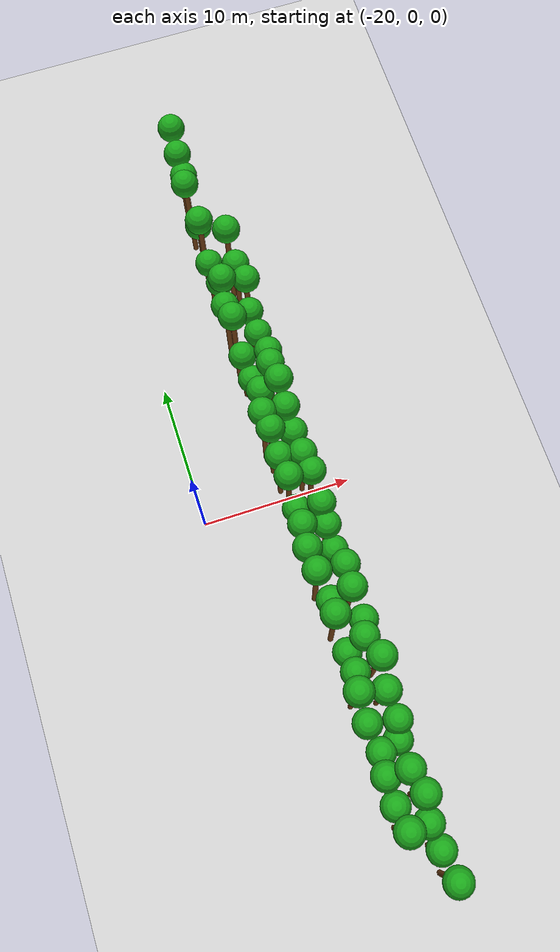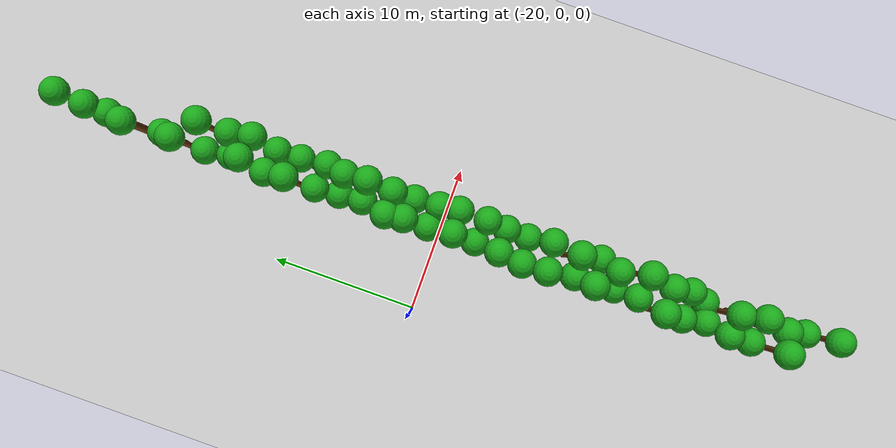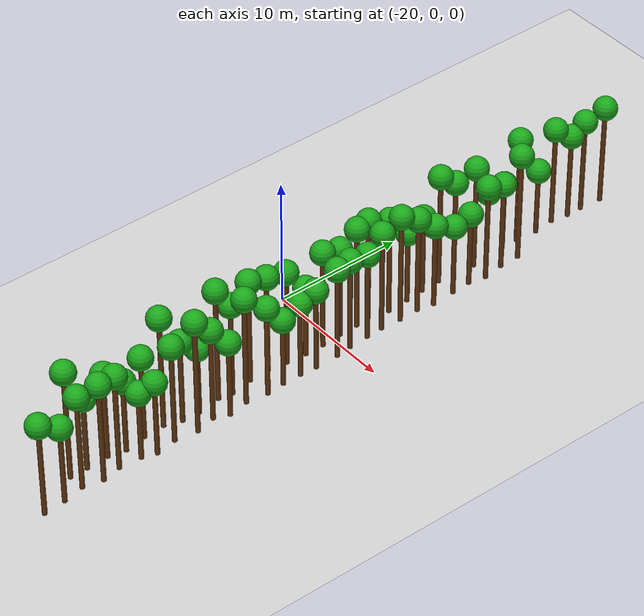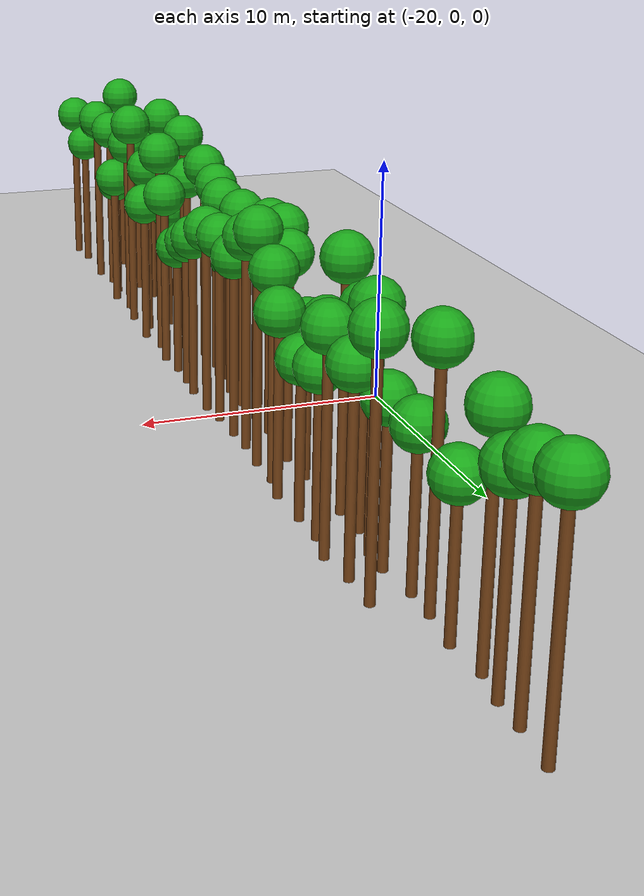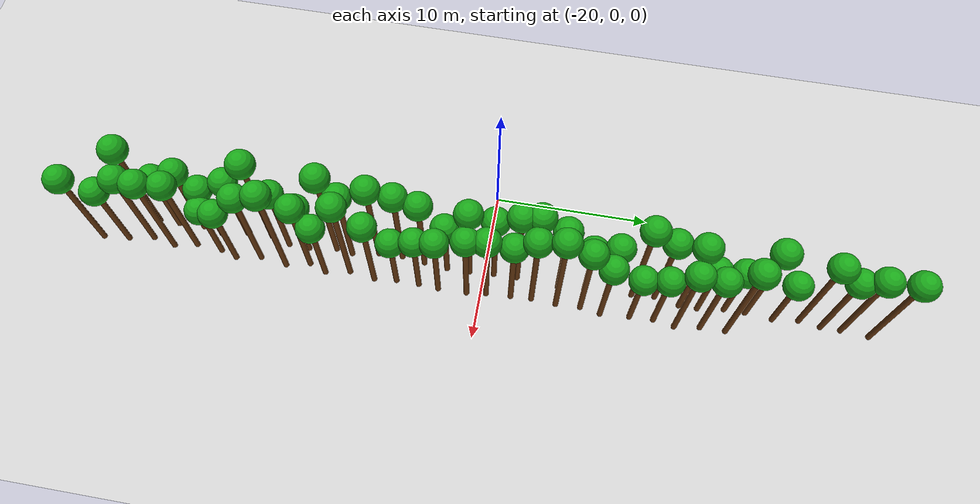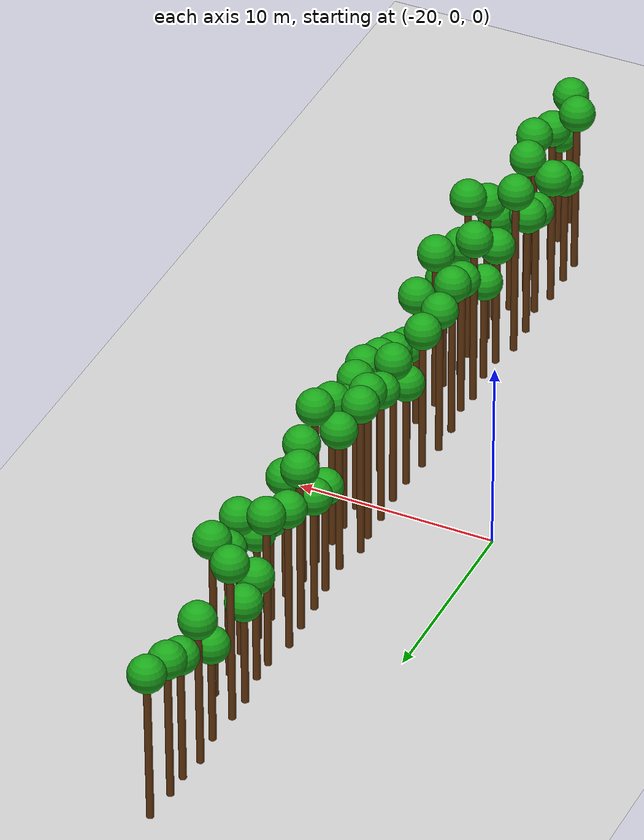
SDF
<sdf version="1.6">
 <world name="forest_world">
  <include><uri>model://sun</uri></include>
  <include><uri>model://ground_plane</uri></include>
  <model name="tree_240">
   <static>true</static>
   <link name="trunk">
    <collision name="collision">
     <pose>-14.51 -21.95 4.31 0 0 0</pose>
     <geometry><cylinder><radius>0.18</radius><length>8.63</length></cylinder></geometry>
    </collision>
    <visual name="trunk_visual">
     <pose>-14.51 -21.95 4.31 0 0 0</pose>
     <geometry><cylinder><radius>0.18</radius><length>8.63</length></cylinder></geometry>
     <material><ambient>0.35 0.20 0.05 1</ambient><diffuse>0.45 0.25 0.08 1</diffuse></material>
    </visual>
    <visual name="leaf_visual">
     <pose>-14.51 -21.95 9.08 0 0 0</pose>
     <geometry><sphere><radius>0.9</radius></sphere></geometry>
     <material><ambient>0.05 0.45 0.05 1</ambient><diffuse>0.10 0.65 0.10 1</diffuse></material>
    </visual>
   </link>
  </model>
  <model name="tree_241">
   <static>true</static>
   <link name="trunk">
    <collision name="collision">
     <pose>-14.52 -20.60 2.82 0 0 0</pose>
     <geometry><cylinder><radius>0.18</radius><length>5.64</length></cylinder></geometry>
    </collision>
    <visual name="trunk_visual">
     <pose>-14.52 -20.60 2.82 0 0 0</pose>
     <geometry><cylinder><radius>0.18</radius><length>5.64</length></cylinder></geometry>
     <material><ambient>0.35 0.20 0.05 1</ambient><diffuse>0.45 0.25 0.08 1</diffuse></material>
    </visual>
    <visual name="leaf_visual">
     <pose>-14.52 -20.60 6.09 0 0 0</pose>
     <geometry><sphere><radius>0.9</radius></sphere></geometry>
     <material><ambient>0.05 0.45 0.05 1</ambient><diffuse>0.10 0.65 0.10 1</diffuse></material>
    </visual>
   </link>
  </model>
  <model name="tree_242">
   <static>true</static>
   <link name="trunk">
    <collision name="collision">
     <pose>-14.58 -18.91 3.37 0 0 0</pose>
     <geometry><cylinder><radius>0.18</radius><length>6.74</length></cylinder></geometry>
    </collision>
    <visual name="trunk_visual">
     <pose>-14.58 -18.91 3.37 0 0 0</pose>
     <geometry><cylinder><radius>0.18</radius><length>6.74</length></cylinder></geometry>
     <material><ambient>0.35 0.20 0.05 1</ambient><diffuse>0.45 0.25 0.08 1</diffuse></material>
    </visual>
    <visual name="leaf_visual">
     <pose>-14.58 -18.91 7.19 0 0 0</pose>
     <geometry><sphere><radius>0.9</radius></sphere></geometry>
     <material><ambient>0.05 0.45 0.05 1</ambient><diffuse>0.10 0.65 0.10 1</diffuse></material>
    </visual>
   </link>
  </model>
  <model name="tree_243">
   <static>true</static>
   <link name="trunk">
    <collision name="collision">
     <pose>-14.30 -17.60 2.80 0 0 0</pose>
     <geometry><cylinder><radius>0.18</radius><length>5.59</length></cylinder></geometry>
    </collision>
    <visual name="trunk_visual">
     <pose>-14.30 -17.60 2.80 0 0 0</pose>
     <geometry><cylinder><radius>0.18</radius><length>5.59</length></cylinder></geometry>
     <material><ambient>0.35 0.20 0.05 1</ambient><diffuse>0.45 0.25 0.08 1</diffuse></material>
    </visual>
    <visual name="leaf_visual">
     <pose>-14.30 -17.60 6.04 0 0 0</pose>
     <geometry><sphere><radius>0.9</radius></sphere></geometry>
     <material><ambient>0.05 0.45 0.05 1</ambient><diffuse>0.10 0.65 0.10 1</diffuse></material>
    </visual>
   </link>
  </model>
  <model name="tree_244">
   <static>true</static>
   <link name="trunk">
    <collision name="collision">
     <pose>-14.60 -15.90 3.25 0 0 0</pose>
     <geometry><cylinder><radius>0.18</radius><length>6.49</length></cylinder></geometry>
    </collision>
    <visual name="trunk_visual">
     <pose>-14.60 -15.90 3.25 0 0 0</pose>
     <geometry><cylinder><radius>0.18</radius><length>6.49</length></cylinder></geometry>
     <material><ambient>0.35 0.20 0.05 1</ambient><diffuse>0.45 0.25 0.08 1</diffuse></material>
    </visual>
    <visual name="leaf_visual">
     <pose>-14.60 -15.90 6.94 0 0 0</pose>
     <geometry><sphere><radius>0.9</radius></sphere></geometry>
     <material><ambient>0.05 0.45 0.05 1</ambient><diffuse>0.10 0.65 0.10 1</diffuse></material>
    </visual>
   </link>
  </model>
  <model name="tree_245">
   <static>true</static>
   <link name="trunk">
    <collision name="collision">
     <pose>-14.68 -14.26 4.46 0 0 0</pose>
     <geometry><cylinder><radius>0.18</radius><length>8.91</length></cylinder></geometry>
    </collision>
    <visual name="trunk_visual">
     <pose>-14.68 -14.26 4.46 0 0 0</pose>
     <geometry><cylinder><radius>0.18</radius><length>8.91</length></cylinder></geometry>
     <material><ambient>0.35 0.20 0.05 1</ambient><diffuse>0.45 0.25 0.08 1</diffuse></material>
    </visual>
    <visual name="leaf_visual">
     <pose>-14.68 -14.26 9.36 0 0 0</pose>
     <geometry><sphere><radius>0.9</radius></sphere></geometry>
     <material><ambient>0.05 0.45 0.05 1</ambient><diffuse>0.10 0.65 0.10 1</diffuse></material>
    </visual>
   </link>
  </model>
  <model name="tree_246">
   <static>true</static>
   <link name="trunk">
    <collision name="collision">
     <pose>-14.29 -12.97 3.22 0 0 0</pose>
     <geometry><cylinder><radius>0.18</radius><length>6.45</length></cylinder></geometry>
    </collision>
    <visual name="trunk_visual">
     <pose>-14.29 -12.97 3.22 0 0 0</pose>
     <geometry><cylinder><radius>0.18</radius><length>6.45</length></cylinder></geometry>
     <material><ambient>0.35 0.20 0.05 1</ambient><diffuse>0.45 0.25 0.08 1</diffuse></material>
    </visual>
    <visual name="leaf_visual">
     <pose>-14.29 -12.97 6.90 0 0 0</pose>
     <geometry><sphere><radius>0.9</radius></sphere></geometry>
     <material><ambient>0.05 0.45 0.05 1</ambient><diffuse>0.10 0.65 0.10 1</diffuse></material>
    </visual>
   </link>
  </model>
  <model name="tree_247">
   <static>true</static>
   <link name="trunk">
    <collision name="collision">
     <pose>-14.26 -11.61 2.59 0 0 0</pose>
     <geometry><cylinder><radius>0.18</radius><length>5.19</length></cylinder></geometry>
    </collision>
    <visual name="trunk_visual">
     <pose>-14.26 -11.61 2.59 0 0 0</pose>
     <geometry><cylinder><radius>0.18</radius><length>5.19</length></cylinder></geometry>
     <material><ambient>0.35 0.20 0.05 1</ambient><diffuse>0.45 0.25 0.08 1</diffuse></material>
    </visual>
    <visual name="leaf_visual">
     <pose>-14.26 -11.61 5.64 0 0 0</pose>
     <geometry><sphere><radius>0.9</radius></sphere></geometry>
     <material><ambient>0.05 0.45 0.05 1</ambient><diffuse>0.10 0.65 0.10 1</diffuse></material>
    </visual>
   </link>
  </model>
  <model name="tree_248">
   <static>true</static>
   <link name="trunk">
    <collision name="collision">
     <pose>-14.52 -9.81 4.48 0 0 0</pose>
     <geometry><cylinder><radius>0.18</radius><length>8.96</length></cylinder></geometry>
    </collision>
    <visual name="trunk_visual">
     <pose>-14.52 -9.81 4.48 0 0 0</pose>
     <geometry><cylinder><radius>0.18</radius><length>8.96</length></cylinder></geometry>
     <material><ambient>0.35 0.20 0.05 1</ambient><diffuse>0.45 0.25 0.08 1</diffuse></material>
    </visual>
    <visual name="leaf_visual">
     <pose>-14.52 -9.81 9.41 0 0 0</pose>
     <geometry><sphere><radius>0.9</radius></sphere></geometry>
     <material><ambient>0.05 0.45 0.05 1</ambient><diffuse>0.10 0.65 0.10 1</diffuse></material>
    </visual>
   </link>
  </model>
  <model name="tree_249">
   <static>true</static>
   <link name="trunk">
    <collision name="collision">
     <pose>-14.37 -8.73 3.64 0 0 0</pose>
     <geometry><cylinder><radius>0.18</radius><length>7.28</length></cylinder></geometry>
    </collision>
    <visual name="trunk_visual">
     <pose>-14.37 -8.73 3.64 0 0 0</pose>
     <geometry><cylinder><radius>0.18</radius><length>7.28</length></cylinder></geometry>
     <material><ambient>0.35 0.20 0.05 1</ambient><diffuse>0.45 0.25 0.08 1</diffuse></material>
    </visual>
    <visual name="leaf_visual">
     <pose>-14.37 -8.73 7.73 0 0 0</pose>
     <geometry><sphere><radius>0.9</radius></sphere></geometry>
     <material><ambient>0.05 0.45 0.05 1</ambient><diffuse>0.10 0.65 0.10 1</diffuse></material>
    </visual>
   </link>
  </model>
  <model name="tree_250">
   <static>true</static>
   <link name="trunk">
    <collision name="collision">
     <pose>-14.66 -7.00 4.10 0 0 0</pose>
     <geometry><cylinder><radius>0.18</radius><length>8.20</length></cylinder></geometry>
    </collision>
    <visual name="trunk_visual">
     <pose>-14.66 -7.00 4.10 0 0 0</pose>
     <geometry><cylinder><radius>0.18</radius><length>8.20</length></cylinder></geometry>
     <material><ambient>0.35 0.20 0.05 1</ambient><diffuse>0.45 0.25 0.08 1</diffuse></material>
    </visual>
    <visual name="leaf_visual">
     <pose>-14.66 -7.00 8.65 0 0 0</pose>
     <geometry><sphere><radius>0.9</radius></sphere></geometry>
     <material><ambient>0.05 0.45 0.05 1</ambient><diffuse>0.10 0.65 0.10 1</diffuse></material>
    </visual>
   </link>
  </model>
  <model name="tree_251">
   <static>true</static>
   <link name="trunk">
    <collision name="collision">
     <pose>-14.72 -5.44 3.85 0 0 0</pose>
     <geometry><cylinder><radius>0.18</radius><length>7.71</length></cylinder></geometry>
    </collision>
    <visual name="trunk_visual">
     <pose>-14.72 -5.44 3.85 0 0 0</pose>
     <geometry><cylinder><radius>0.18</radius><length>7.71</length></cylinder></geometry>
     <material><ambient>0.35 0.20 0.05 1</ambient><diffuse>0.45 0.25 0.08 1</diffuse></material>
    </visual>
    <visual name="leaf_visual">
     <pose>-14.72 -5.44 8.16 0 0 0</pose>
     <geometry><sphere><radius>0.9</radius></sphere></geometry>
     <material><ambient>0.05 0.45 0.05 1</ambient><diffuse>0.10 0.65 0.10 1</diffuse></material>
    </visual>
   </link>
  </model>
  <model name="tree_252">
   <static>true</static>
   <link name="trunk">
    <collision name="collision">
     <pose>-14.54 -3.93 3.73 0 0 0</pose>
     <geometry><cylinder><radius>0.18</radius><length>7.46</length></cylinder></geometry>
    </collision>
    <visual name="trunk_visual">
     <pose>-14.54 -3.93 3.73 0 0 0</pose>
     <geometry><cylinder><radius>0.18</radius><length>7.46</length></cylinder></geometry>
     <material><ambient>0.35 0.20 0.05 1</ambient><diffuse>0.45 0.25 0.08 1</diffuse></material>
    </visual>
    <visual name="leaf_visual">
     <pose>-14.54 -3.93 7.91 0 0 0</pose>
     <geometry><sphere><radius>0.9</radius></sphere></geometry>
     <material><ambient>0.05 0.45 0.05 1</ambient><diffuse>0.10 0.65 0.10 1</diffuse></material>
    </visual>
   </link>
  </model>
  <model name="tree_253">
   <static>true</static>
   <link name="trunk">
    <collision name="collision">
     <pose>-14.40 -2.40 2.71 0 0 0</pose>
     <geometry><cylinder><radius>0.18</radius><length>5.43</length></cylinder></geometry>
    </collision>
    <visual name="trunk_visual">
     <pose>-14.40 -2.40 2.71 0 0 0</pose>
     <geometry><cylinder><radius>0.18</radius><length>5.43</length></cylinder></geometry>
     <material><ambient>0.35 0.20 0.05 1</ambient><diffuse>0.45 0.25 0.08 1</diffuse></material>
    </visual>
    <visual name="leaf_visual">
     <pose>-14.40 -2.40 5.88 0 0 0</pose>
     <geometry><sphere><radius>0.9</radius></sphere></geometry>
     <material><ambient>0.05 0.45 0.05 1</ambient><diffuse>0.10 0.65 0.10 1</diffuse></material>
    </visual>
   </link>
  </model>
  <model name="tree_254">
   <static>true</static>
   <link name="trunk">
    <collision name="collision">
     <pose>-14.41 -0.92 3.84 0 0 0</pose>
     <geometry><cylinder><radius>0.18</radius><length>7.69</length></cylinder></geometry>
    </collision>
    <visual name="trunk_visual">
     <pose>-14.41 -0.92 3.84 0 0 0</pose>
     <geometry><cylinder><radius>0.18</radius><length>7.69</length></cylinder></geometry>
     <material><ambient>0.35 0.20 0.05 1</ambient><diffuse>0.45 0.25 0.08 1</diffuse></material>
    </visual>
    <visual name="leaf_visual">
     <pose>-14.41 -0.92 8.14 0 0 0</pose>
     <geometry><sphere><radius>0.9</radius></sphere></geometry>
     <material><ambient>0.05 0.45 0.05 1</ambient><diffuse>0.10 0.65 0.10 1</diffuse></material>
    </visual>
   </link>
  </model>
  <model name="tree_255">
   <static>true</static>
   <link name="trunk">
    <collision name="collision">
     <pose>-14.52 0.66 3.55 0 0 0</pose>
     <geometry><cylinder><radius>0.18</radius><length>7.11</length></cylinder></geometry>
    </collision>
    <visual name="trunk_visual">
     <pose>-14.52 0.66 3.55 0 0 0</pose>
     <geometry><cylinder><radius>0.18</radius><length>7.11</length></cylinder></geometry>
     <material><ambient>0.35 0.20 0.05 1</ambient><diffuse>0.45 0.25 0.08 1</diffuse></material>
    </visual>
    <visual name="leaf_visual">
     <pose>-14.52 0.66 7.56 0 0 0</pose>
     <geometry><sphere><radius>0.9</radius></sphere></geometry>
     <material><ambient>0.05 0.45 0.05 1</ambient><diffuse>0.10 0.65 0.10 1</diffuse></material>
    </visual>
   </link>
  </model>
  <model name="tree_256">
   <static>true</static>
   <link name="trunk">
    <collision name="collision">
     <pose>-14.55 2.17 4.03 0 0 0</pose>
     <geometry><cylinder><radius>0.18</radius><length>8.06</length></cylinder></geometry>
    </collision>
    <visual name="trunk_visual">
     <pose>-14.55 2.17 4.03 0 0 0</pose>
     <geometry><cylinder><radius>0.18</radius><length>8.06</length></cylinder></geometry>
     <material><ambient>0.35 0.20 0.05 1</ambient><diffuse>0.45 0.25 0.08 1</diffuse></material>
    </visual>
    <visual name="leaf_visual">
     <pose>-14.55 2.17 8.51 0 0 0</pose>
     <geometry><sphere><radius>0.9</radius></sphere></geometry>
     <material><ambient>0.05 0.45 0.05 1</ambient><diffuse>0.10 0.65 0.10 1</diffuse></material>
    </visual>
   </link>
  </model>
  <model name="tree_257">
   <static>true</static>
   <link name="trunk">
    <collision name="collision">
     <pose>-14.70 3.29 4.06 0 0 0</pose>
     <geometry><cylinder><radius>0.18</radius><length>8.13</length></cylinder></geometry>
    </collision>
    <visual name="trunk_visual">
     <pose>-14.70 3.29 4.06 0 0 0</pose>
     <geometry><cylinder><radius>0.18</radius><length>8.13</length></cylinder></geometry>
     <material><ambient>0.35 0.20 0.05 1</ambient><diffuse>0.45 0.25 0.08 1</diffuse></material>
    </visual>
    <visual name="leaf_visual">
     <pose>-14.70 3.29 8.58 0 0 0</pose>
     <geometry><sphere><radius>0.9</radius></sphere></geometry>
     <material><ambient>0.05 0.45 0.05 1</ambient><diffuse>0.10 0.65 0.10 1</diffuse></material>
    </visual>
   </link>
  </model>
  <model name="tree_258">
   <static>true</static>
   <link name="trunk">
    <collision name="collision">
     <pose>-14.35 4.87 3.81 0 0 0</pose>
     <geometry><cylinder><radius>0.18</radius><length>7.61</length></cylinder></geometry>
    </collision>
    <visual name="trunk_visual">
     <pose>-14.35 4.87 3.81 0 0 0</pose>
     <geometry><cylinder><radius>0.18</radius><length>7.61</length></cylinder></geometry>
     <material><ambient>0.35 0.20 0.05 1</ambient><diffuse>0.45 0.25 0.08 1</diffuse></material>
    </visual>
    <visual name="leaf_visual">
     <pose>-14.35 4.87 8.06 0 0 0</pose>
     <geometry><sphere><radius>0.9</radius></sphere></geometry>
     <material><ambient>0.05 0.45 0.05 1</ambient><diffuse>0.10 0.65 0.10 1</diffuse></material>
    </visual>
   </link>
  </model>
  <model name="tree_259">
   <static>true</static>
   <link name="trunk">
    <collision name="collision">
     <pose>-14.44 6.58 2.78 0 0 0</pose>
     <geometry><cylinder><radius>0.18</radius><length>5.56</length></cylinder></geometry>
    </collision>
    <visual name="trunk_visual">
     <pose>-14.44 6.58 2.78 0 0 0</pose>
     <geometry><cylinder><radius>0.18</radius><length>5.56</length></cylinder></geometry>
     <material><ambient>0.35 0.20 0.05 1</ambient><diffuse>0.45 0.25 0.08 1</diffuse></material>
    </visual>
    <visual name="leaf_visual">
     <pose>-14.44 6.58 6.01 0 0 0</pose>
     <geometry><sphere><radius>0.9</radius></sphere></geometry>
     <material><ambient>0.05 0.45 0.05 1</ambient><diffuse>0.10 0.65 0.10 1</diffuse></material>
    </visual>
   </link>
  </model>
  <model name="tree_260">
   <static>true</static>
   <link name="trunk">
    <collision name="collision">
     <pose>-14.58 8.08 3.05 0 0 0</pose>
     <geometry><cylinder><radius>0.18</radius><length>6.09</length></cylinder></geometry>
    </collision>
    <visual name="trunk_visual">
     <pose>-14.58 8.08 3.05 0 0 0</pose>
     <geometry><cylinder><radius>0.18</radius><length>6.09</length></cylinder></geometry>
     <material><ambient>0.35 0.20 0.05 1</ambient><diffuse>0.45 0.25 0.08 1</diffuse></material>
    </visual>
    <visual name="leaf_visual">
     <pose>-14.58 8.08 6.54 0 0 0</pose>
     <geometry><sphere><radius>0.9</radius></sphere></geometry>
     <material><ambient>0.05 0.45 0.05 1</ambient><diffuse>0.10 0.65 0.10 1</diffuse></material>
    </visual>
   </link>
  </model>
  <model name="tree_261">
   <static>true</static>
   <link name="trunk">
    <collision name="collision">
     <pose>-14.63 9.61 4.39 0 0 0</pose>
     <geometry><cylinder><radius>0.18</radius><length>8.78</length></cylinder></geometry>
    </collision>
    <visual name="trunk_visual">
     <pose>-14.63 9.61 4.39 0 0 0</pose>
     <geometry><cylinder><radius>0.18</radius><length>8.78</length></cylinder></geometry>
     <material><ambient>0.35 0.20 0.05 1</ambient><diffuse>0.45 0.25 0.08 1</diffuse></material>
    </visual>
    <visual name="leaf_visual">
     <pose>-14.63 9.61 9.23 0 0 0</pose>
     <geometry><sphere><radius>0.9</radius></sphere></geometry>
     <material><ambient>0.05 0.45 0.05 1</ambient><diffuse>0.10 0.65 0.10 1</diffuse></material>
    </visual>
   </link>
  </model>
  <model name="tree_262">
   <static>true</static>
   <link name="trunk">
    <collision name="collision">
     <pose>-14.73 11.08 3.75 0 0 0</pose>
     <geometry><cylinder><radius>0.18</radius><length>7.50</length></cylinder></geometry>
    </collision>
    <visual name="trunk_visual">
     <pose>-14.73 11.08 3.75 0 0 0</pose>
     <geometry><cylinder><radius>0.18</radius><length>7.50</length></cylinder></geometry>
     <material><ambient>0.35 0.20 0.05 1</ambient><diffuse>0.45 0.25 0.08 1</diffuse></material>
    </visual>
    <visual name="leaf_visual">
     <pose>-14.73 11.08 7.95 0 0 0</pose>
     <geometry><sphere><radius>0.9</radius></sphere></geometry>
     <material><ambient>0.05 0.45 0.05 1</ambient><diffuse>0.10 0.65 0.10 1</diffuse></material>
    </visual>
   </link>
  </model>
  <model name="tree_263">
   <static>true</static>
   <link name="trunk">
    <collision name="collision">
     <pose>-14.42 12.67 4.07 0 0 0</pose>
     <geometry><cylinder><radius>0.18</radius><length>8.15</length></cylinder></geometry>
    </collision>
    <visual name="trunk_visual">
     <pose>-14.42 12.67 4.07 0 0 0</pose>
     <geometry><cylinder><radius>0.18</radius><length>8.15</length></cylinder></geometry>
     <material><ambient>0.35 0.20 0.05 1</ambient><diffuse>0.45 0.25 0.08 1</diffuse></material>
    </visual>
    <visual name="leaf_visual">
     <pose>-14.42 12.67 8.60 0 0 0</pose>
     <geometry><sphere><radius>0.9</radius></sphere></geometry>
     <material><ambient>0.05 0.45 0.05 1</ambient><diffuse>0.10 0.65 0.10 1</diffuse></material>
    </visual>
   </link>
  </model>
  <model name="tree_264">
   <static>true</static>
   <link name="trunk">
    <collision name="collision">
     <pose>-14.41 13.83 2.75 0 0 0</pose>
     <geometry><cylinder><radius>0.18</radius><length>5.49</length></cylinder></geometry>
    </collision>
    <visual name="trunk_visual">
     <pose>-14.41 13.83 2.75 0 0 0</pose>
     <geometry><cylinder><radius>0.18</radius><length>5.49</length></cylinder></geometry>
     <material><ambient>0.35 0.20 0.05 1</ambient><diffuse>0.45 0.25 0.08 1</diffuse></material>
    </visual>
    <visual name="leaf_visual">
     <pose>-14.41 13.83 5.94 0 0 0</pose>
     <geometry><sphere><radius>0.9</radius></sphere></geometry>
     <material><ambient>0.05 0.45 0.05 1</ambient><diffuse>0.10 0.65 0.10 1</diffuse></material>
    </visual>
   </link>
  </model>
  <model name="tree_265">
   <static>true</static>
   <link name="trunk">
    <collision name="collision">
     <pose>-14.65 15.53 2.64 0 0 0</pose>
     <geometry><cylinder><radius>0.18</radius><length>5.28</length></cylinder></geometry>
    </collision>
    <visual name="trunk_visual">
     <pose>-14.65 15.53 2.64 0 0 0</pose>
     <geometry><cylinder><radius>0.18</radius><length>5.28</length></cylinder></geometry>
     <material><ambient>0.35 0.20 0.05 1</ambient><diffuse>0.45 0.25 0.08 1</diffuse></material>
    </visual>
    <visual name="leaf_visual">
     <pose>-14.65 15.53 5.73 0 0 0</pose>
     <geometry><sphere><radius>0.9</radius></sphere></geometry>
     <material><ambient>0.05 0.45 0.05 1</ambient><diffuse>0.10 0.65 0.10 1</diffuse></material>
    </visual>
   </link>
  </model>
  <model name="tree_266">
   <static>true</static>
   <link name="trunk">
    <collision name="collision">
     <pose>-14.65 16.87 4.23 0 0 0</pose>
     <geometry><cylinder><radius>0.18</radius><length>8.46</length></cylinder></geometry>
    </collision>
    <visual name="trunk_visual">
     <pose>-14.65 16.87 4.23 0 0 0</pose>
     <geometry><cylinder><radius>0.18</radius><length>8.46</length></cylinder></geometry>
     <material><ambient>0.35 0.20 0.05 1</ambient><diffuse>0.45 0.25 0.08 1</diffuse></material>
    </visual>
    <visual name="leaf_visual">
     <pose>-14.65 16.87 8.91 0 0 0</pose>
     <geometry><sphere><radius>0.9</radius></sphere></geometry>
     <material><ambient>0.05 0.45 0.05 1</ambient><diffuse>0.10 0.65 0.10 1</diffuse></material>
    </visual>
   </link>
  </model>
  <model name="tree_267">
   <static>true</static>
   <link name="trunk">
    <collision name="collision">
     <pose>-14.50 18.58 2.51 0 0 0</pose>
     <geometry><cylinder><radius>0.18</radius><length>5.02</length></cylinder></geometry>
    </collision>
    <visual name="trunk_visual">
     <pose>-14.50 18.58 2.51 0 0 0</pose>
     <geometry><cylinder><radius>0.18</radius><length>5.02</length></cylinder></geometry>
     <material><ambient>0.35 0.20 0.05 1</ambient><diffuse>0.45 0.25 0.08 1</diffuse></material>
    </visual>
    <visual name="leaf_visual">
     <pose>-14.50 18.58 5.47 0 0 0</pose>
     <geometry><sphere><radius>0.9</radius></sphere></geometry>
     <material><ambient>0.05 0.45 0.05 1</ambient><diffuse>0.10 0.65 0.10 1</diffuse></material>
    </visual>
   </link>
  </model>
  <model name="tree_268">
   <static>true</static>
   <link name="trunk">
    <collision name="collision">
     <pose>-14.70 20.24 3.85 0 0 0</pose>
     <geometry><cylinder><radius>0.18</radius><length>7.71</length></cylinder></geometry>
    </collision>
    <visual name="trunk_visual">
     <pose>-14.70 20.24 3.85 0 0 0</pose>
     <geometry><cylinder><radius>0.18</radius><length>7.71</length></cylinder></geometry>
     <material><ambient>0.35 0.20 0.05 1</ambient><diffuse>0.45 0.25 0.08 1</diffuse></material>
    </visual>
    <visual name="leaf_visual">
     <pose>-14.70 20.24 8.16 0 0 0</pose>
     <geometry><sphere><radius>0.9</radius></sphere></geometry>
     <material><ambient>0.05 0.45 0.05 1</ambient><diffuse>0.10 0.65 0.10 1</diffuse></material>
    </visual>
   </link>
  </model>
  <model name="tree_269">
   <static>true</static>
   <link name="trunk">
    <collision name="collision">
     <pose>-14.49 21.60 3.31 0 0 0</pose>
     <geometry><cylinder><radius>0.18</radius><length>6.62</length></cylinder></geometry>
    </collision>
    <visual name="trunk_visual">
     <pose>-14.49 21.60 3.31 0 0 0</pose>
     <geometry><cylinder><radius>0.18</radius><length>6.62</length></cylinder></geometry>
     <material><ambient>0.35 0.20 0.05 1</ambient><diffuse>0.45 0.25 0.08 1</diffuse></material>
    </visual>
    <visual name="leaf_visual">
     <pose>-14.49 21.60 7.07 0 0 0</pose>
     <geometry><sphere><radius>0.9</radius></sphere></geometry>
     <material><ambient>0.05 0.45 0.05 1</ambient><diffuse>0.10 0.65 0.10 1</diffuse></material>
    </visual>
   </link>
  </model>
  <model name="tree_270">
   <static>true</static>
   <link name="trunk">
    <collision name="collision">
     <pose>-14.49 22.86 3.65 0 0 0</pose>
     <geometry><cylinder><radius>0.18</radius><length>7.30</length></cylinder></geometry>
    </collision>
    <visual name="trunk_visual">
     <pose>-14.49 22.86 3.65 0 0 0</pose>
     <geometry><cylinder><radius>0.18</radius><length>7.30</length></cylinder></geometry>
     <material><ambient>0.35 0.20 0.05 1</ambient><diffuse>0.45 0.25 0.08 1</diffuse></material>
    </visual>
    <visual name="leaf_visual">
     <pose>-14.49 22.86 7.75 0 0 0</pose>
     <geometry><sphere><radius>0.9</radius></sphere></geometry>
     <material><ambient>0.05 0.45 0.05 1</ambient><diffuse>0.10 0.65 0.10 1</diffuse></material>
    </visual>
   </link>
  </model>
  <model name="tree_271">
   <static>true</static>
   <link name="trunk">
    <collision name="collision">
     <pose>-14.36 24.61 3.87 0 0 0</pose>
     <geometry><cylinder><radius>0.18</radius><length>7.74</length></cylinder></geometry>
    </collision>
    <visual name="trunk_visual">
     <pose>-14.36 24.61 3.87 0 0 0</pose>
     <geometry><cylinder><radius>0.18</radius><length>7.74</length></cylinder></geometry>
     <material><ambient>0.35 0.20 0.05 1</ambient><diffuse>0.45 0.25 0.08 1</diffuse></material>
    </visual>
    <visual name="leaf_visual">
     <pose>-14.36 24.61 8.19 0 0 0</pose>
     <geometry><sphere><radius>0.9</radius></sphere></geometry>
     <material><ambient>0.05 0.45 0.05 1</ambient><diffuse>0.10 0.65 0.10 1</diffuse></material>
    </visual>
   </link>
  </model>
  <model name="tree_272">
   <static>true</static>
   <link name="trunk">
    <collision name="collision">
     <pose>-12.76 -25.23 3.58 0 0 0</pose>
     <geometry><cylinder><radius>0.18</radius><length>7.17</length></cylinder></geometry>
    </collision>
    <visual name="trunk_visual">
     <pose>-12.76 -25.23 3.58 0 0 0</pose>
     <geometry><cylinder><radius>0.18</radius><length>7.17</length></cylinder></geometry>
     <material><ambient>0.35 0.20 0.05 1</ambient><diffuse>0.45 0.25 0.08 1</diffuse></material>
    </visual>
    <visual name="leaf_visual">
     <pose>-12.76 -25.23 7.62 0 0 0</pose>
     <geometry><sphere><radius>0.9</radius></sphere></geometry>
     <material><ambient>0.05 0.45 0.05 1</ambient><diffuse>0.10 0.65 0.10 1</diffuse></material>
    </visual>
   </link>
  </model>
  <model name="tree_273">
   <static>true</static>
   <link name="trunk">
    <collision name="collision">
     <pose>-12.91 -23.54 2.97 0 0 0</pose>
     <geometry><cylinder><radius>0.18</radius><length>5.94</length></cylinder></geometry>
    </collision>
    <visual name="trunk_visual">
     <pose>-12.91 -23.54 2.97 0 0 0</pose>
     <geometry><cylinder><radius>0.18</radius><length>5.94</length></cylinder></geometry>
     <material><ambient>0.35 0.20 0.05 1</ambient><diffuse>0.45 0.25 0.08 1</diffuse></material>
    </visual>
    <visual name="leaf_visual">
     <pose>-12.91 -23.54 6.39 0 0 0</pose>
     <geometry><sphere><radius>0.9</radius></sphere></geometry>
     <material><ambient>0.05 0.45 0.05 1</ambient><diffuse>0.10 0.65 0.10 1</diffuse></material>
    </visual>
   </link>
  </model>
  <model name="tree_274">
   <static>true</static>
   <link name="trunk">
    <collision name="collision">
     <pose>-13.23 -21.92 3.70 0 0 0</pose>
     <geometry><cylinder><radius>0.18</radius><length>7.39</length></cylinder></geometry>
    </collision>
    <visual name="trunk_visual">
     <pose>-13.23 -21.92 3.70 0 0 0</pose>
     <geometry><cylinder><radius>0.18</radius><length>7.39</length></cylinder></geometry>
     <material><ambient>0.35 0.20 0.05 1</ambient><diffuse>0.45 0.25 0.08 1</diffuse></material>
    </visual>
    <visual name="leaf_visual">
     <pose>-13.23 -21.92 7.84 0 0 0</pose>
     <geometry><sphere><radius>0.9</radius></sphere></geometry>
     <material><ambient>0.05 0.45 0.05 1</ambient><diffuse>0.10 0.65 0.10 1</diffuse></material>
    </visual>
   </link>
  </model>
  <model name="tree_275">
   <static>true</static>
   <link name="trunk">
    <collision name="collision">
     <pose>-12.92 -20.42 3.91 0 0 0</pose>
     <geometry><cylinder><radius>0.18</radius><length>7.81</length></cylinder></geometry>
    </collision>
    <visual name="trunk_visual">
     <pose>-12.92 -20.42 3.91 0 0 0</pose>
     <geometry><cylinder><radius>0.18</radius><length>7.81</length></cylinder></geometry>
     <material><ambient>0.35 0.20 0.05 1</ambient><diffuse>0.45 0.25 0.08 1</diffuse></material>
    </visual>
    <visual name="leaf_visual">
     <pose>-12.92 -20.42 8.26 0 0 0</pose>
     <geometry><sphere><radius>0.9</radius></sphere></geometry>
     <material><ambient>0.05 0.45 0.05 1</ambient><diffuse>0.10 0.65 0.10 1</diffuse></material>
    </visual>
   </link>
  </model>
  <model name="tree_276">
   <static>true</static>
   <link name="trunk">
    <collision name="collision">
     <pose>-13.23 -18.95 3.75 0 0 0</pose>
     <geometry><cylinder><radius>0.18</radius><length>7.50</length></cylinder></geometry>
    </collision>
    <visual name="trunk_visual">
     <pose>-13.23 -18.95 3.75 0 0 0</pose>
     <geometry><cylinder><radius>0.18</radius><length>7.50</length></cylinder></geometry>
     <material><ambient>0.35 0.20 0.05 1</ambient><diffuse>0.45 0.25 0.08 1</diffuse></material>
    </visual>
    <visual name="leaf_visual">
     <pose>-13.23 -18.95 7.95 0 0 0</pose>
     <geometry><sphere><radius>0.9</radius></sphere></geometry>
     <material><ambient>0.05 0.45 0.05 1</ambient><diffuse>0.10 0.65 0.10 1</diffuse></material>
    </visual>
   </link>
  </model>
  <model name="tree_277">
   <static>true</static>
   <link name="trunk">
    <collision name="collision">
     <pose>-13.11 -17.25 2.60 0 0 0</pose>
     <geometry><cylinder><radius>0.18</radius><length>5.20</length></cylinder></geometry>
    </collision>
    <visual name="trunk_visual">
     <pose>-13.11 -17.25 2.60 0 0 0</pose>
     <geometry><cylinder><radius>0.18</radius><length>5.20</length></cylinder></geometry>
     <material><ambient>0.35 0.20 0.05 1</ambient><diffuse>0.45 0.25 0.08 1</diffuse></material>
    </visual>
    <visual name="leaf_visual">
     <pose>-13.11 -17.25 5.65 0 0 0</pose>
     <geometry><sphere><radius>0.9</radius></sphere></geometry>
     <material><ambient>0.05 0.45 0.05 1</ambient><diffuse>0.10 0.65 0.10 1</diffuse></material>
    </visual>
   </link>
  </model>
  <model name="tree_278">
   <static>true</static>
   <link name="trunk">
    <collision name="collision">
     <pose>-12.79 -16.17 2.86 0 0 0</pose>
     <geometry><cylinder><radius>0.18</radius><length>5.73</length></cylinder></geometry>
    </collision>
    <visual name="trunk_visual">
     <pose>-12.79 -16.17 2.86 0 0 0</pose>
     <geometry><cylinder><radius>0.18</radius><length>5.73</length></cylinder></geometry>
     <material><ambient>0.35 0.20 0.05 1</ambient><diffuse>0.45 0.25 0.08 1</diffuse></material>
    </visual>
    <visual name="leaf_visual">
     <pose>-12.79 -16.17 6.18 0 0 0</pose>
     <geometry><sphere><radius>0.9</radius></sphere></geometry>
     <material><ambient>0.05 0.45 0.05 1</ambient><diffuse>0.10 0.65 0.10 1</diffuse></material>
    </visual>
   </link>
  </model>
  <model name="tree_279">
   <static>true</static>
   <link name="trunk">
    <collision name="collision">
     <pose>-13.07 -14.55 3.85 0 0 0</pose>
     <geometry><cylinder><radius>0.18</radius><length>7.70</length></cylinder></geometry>
    </collision>
    <visual name="trunk_visual">
     <pose>-13.07 -14.55 3.85 0 0 0</pose>
     <geometry><cylinder><radius>0.18</radius><length>7.70</length></cylinder></geometry>
     <material><ambient>0.35 0.20 0.05 1</ambient><diffuse>0.45 0.25 0.08 1</diffuse></material>
    </visual>
    <visual name="leaf_visual">
     <pose>-13.07 -14.55 8.15 0 0 0</pose>
     <geometry><sphere><radius>0.9</radius></sphere></geometry>
     <material><ambient>0.05 0.45 0.05 1</ambient><diffuse>0.10 0.65 0.10 1</diffuse></material>
    </visual>
   </link>
  </model>
  <model name="tree_280">
   <static>true</static>
   <link name="trunk">
    <collision name="collision">
     <pose>-12.83 -12.80 4.49 0 0 0</pose>
     <geometry><cylinder><radius>0.18</radius><length>8.98</length></cylinder></geometry>
    </collision>
    <visual name="trunk_visual">
     <pose>-12.83 -12.80 4.49 0 0 0</pose>
     <geometry><cylinder><radius>0.18</radius><length>8.98</length></cylinder></geometry>
     <material><ambient>0.35 0.20 0.05 1</ambient><diffuse>0.45 0.25 0.08 1</diffuse></material>
    </visual>
    <visual name="leaf_visual">
     <pose>-12.83 -12.80 9.43 0 0 0</pose>
     <geometry><sphere><radius>0.9</radius></sphere></geometry>
     <material><ambient>0.05 0.45 0.05 1</ambient><diffuse>0.10 0.65 0.10 1</diffuse></material>
    </visual>
   </link>
  </model>
  <model name="tree_281">
   <static>true</static>
   <link name="trunk">
    <collision name="collision">
     <pose>-13.19 -11.27 3.63 0 0 0</pose>
     <geometry><cylinder><radius>0.18</radius><length>7.25</length></cylinder></geometry>
    </collision>
    <visual name="trunk_visual">
     <pose>-13.19 -11.27 3.63 0 0 0</pose>
     <geometry><cylinder><radius>0.18</radius><length>7.25</length></cylinder></geometry>
     <material><ambient>0.35 0.20 0.05 1</ambient><diffuse>0.45 0.25 0.08 1</diffuse></material>
    </visual>
    <visual name="leaf_visual">
     <pose>-13.19 -11.27 7.70 0 0 0</pose>
     <geometry><sphere><radius>0.9</radius></sphere></geometry>
     <material><ambient>0.05 0.45 0.05 1</ambient><diffuse>0.10 0.65 0.10 1</diffuse></material>
    </visual>
   </link>
  </model>
  <model name="tree_282">
   <static>true</static>
   <link name="trunk">
    <collision name="collision">
     <pose>-12.77 -10.15 2.94 0 0 0</pose>
     <geometry><cylinder><radius>0.18</radius><length>5.88</length></cylinder></geometry>
    </collision>
    <visual name="trunk_visual">
     <pose>-12.77 -10.15 2.94 0 0 0</pose>
     <geometry><cylinder><radius>0.18</radius><length>5.88</length></cylinder></geometry>
     <material><ambient>0.35 0.20 0.05 1</ambient><diffuse>0.45 0.25 0.08 1</diffuse></material>
    </visual>
    <visual name="leaf_visual">
     <pose>-12.77 -10.15 6.33 0 0 0</pose>
     <geometry><sphere><radius>0.9</radius></sphere></geometry>
     <material><ambient>0.05 0.45 0.05 1</ambient><diffuse>0.10 0.65 0.10 1</diffuse></material>
    </visual>
   </link>
  </model>
  <model name="tree_283">
   <static>true</static>
   <link name="trunk">
    <collision name="collision">
     <pose>-13.08 -8.57 4.26 0 0 0</pose>
     <geometry><cylinder><radius>0.18</radius><length>8.52</length></cylinder></geometry>
    </collision>
    <visual name="trunk_visual">
     <pose>-13.08 -8.57 4.26 0 0 0</pose>
     <geometry><cylinder><radius>0.18</radius><length>8.52</length></cylinder></geometry>
     <material><ambient>0.35 0.20 0.05 1</ambient><diffuse>0.45 0.25 0.08 1</diffuse></material>
    </visual>
    <visual name="leaf_visual">
     <pose>-13.08 -8.57 8.97 0 0 0</pose>
     <geometry><sphere><radius>0.9</radius></sphere></geometry>
     <material><ambient>0.05 0.45 0.05 1</ambient><diffuse>0.10 0.65 0.10 1</diffuse></material>
    </visual>
   </link>
  </model>
  <model name="tree_284">
   <static>true</static>
   <link name="trunk">
    <collision name="collision">
     <pose>-12.85 -6.91 3.53 0 0 0</pose>
     <geometry><cylinder><radius>0.18</radius><length>7.05</length></cylinder></geometry>
    </collision>
    <visual name="trunk_visual">
     <pose>-12.85 -6.91 3.53 0 0 0</pose>
     <geometry><cylinder><radius>0.18</radius><length>7.05</length></cylinder></geometry>
     <material><ambient>0.35 0.20 0.05 1</ambient><diffuse>0.45 0.25 0.08 1</diffuse></material>
    </visual>
    <visual name="leaf_visual">
     <pose>-12.85 -6.91 7.50 0 0 0</pose>
     <geometry><sphere><radius>0.9</radius></sphere></geometry>
     <material><ambient>0.05 0.45 0.05 1</ambient><diffuse>0.10 0.65 0.10 1</diffuse></material>
    </visual>
   </link>
  </model>
  <model name="tree_285">
   <static>true</static>
   <link name="trunk">
    <collision name="collision">
     <pose>-13.00 -5.47 2.56 0 0 0</pose>
     <geometry><cylinder><radius>0.18</radius><length>5.13</length></cylinder></geometry>
    </collision>
    <visual name="trunk_visual">
     <pose>-13.00 -5.47 2.56 0 0 0</pose>
     <geometry><cylinder><radius>0.18</radius><length>5.13</length></cylinder></geometry>
     <material><ambient>0.35 0.20 0.05 1</ambient><diffuse>0.45 0.25 0.08 1</diffuse></material>
    </visual>
    <visual name="leaf_visual">
     <pose>-13.00 -5.47 5.58 0 0 0</pose>
     <geometry><sphere><radius>0.9</radius></sphere></geometry>
     <material><ambient>0.05 0.45 0.05 1</ambient><diffuse>0.10 0.65 0.10 1</diffuse></material>
    </visual>
   </link>
  </model>
  <model name="tree_286">
   <static>true</static>
   <link name="trunk">
    <collision name="collision">
     <pose>-12.99 -4.00 2.90 0 0 0</pose>
     <geometry><cylinder><radius>0.18</radius><length>5.80</length></cylinder></geometry>
    </collision>
    <visual name="trunk_visual">
     <pose>-12.99 -4.00 2.90 0 0 0</pose>
     <geometry><cylinder><radius>0.18</radius><length>5.80</length></cylinder></geometry>
     <material><ambient>0.35 0.20 0.05 1</ambient><diffuse>0.45 0.25 0.08 1</diffuse></material>
    </visual>
    <visual name="leaf_visual">
     <pose>-12.99 -4.00 6.25 0 0 0</pose>
     <geometry><sphere><radius>0.9</radius></sphere></geometry>
     <material><ambient>0.05 0.45 0.05 1</ambient><diffuse>0.10 0.65 0.10 1</diffuse></material>
    </visual>
   </link>
  </model>
  <model name="tree_287">
   <static>true</static>
   <link name="trunk">
    <collision name="collision">
     <pose>-12.90 -2.71 3.15 0 0 0</pose>
     <geometry><cylinder><radius>0.18</radius><length>6.30</length></cylinder></geometry>
    </collision>
    <visual name="trunk_visual">
     <pose>-12.90 -2.71 3.15 0 0 0</pose>
     <geometry><cylinder><radius>0.18</radius><length>6.30</length></cylinder></geometry>
     <material><ambient>0.35 0.20 0.05 1</ambient><diffuse>0.45 0.25 0.08 1</diffuse></material>
    </visual>
    <visual name="leaf_visual">
     <pose>-12.90 -2.71 6.75 0 0 0</pose>
     <geometry><sphere><radius>0.9</radius></sphere></geometry>
     <material><ambient>0.05 0.45 0.05 1</ambient><diffuse>0.10 0.65 0.10 1</diffuse></material>
    </visual>
   </link>
  </model>
  <model name="tree_288">
   <static>true</static>
   <link name="trunk">
    <collision name="collision">
     <pose>-12.93 -0.86 3.57 0 0 0</pose>
     <geometry><cylinder><radius>0.18</radius><length>7.14</length></cylinder></geometry>
    </collision>
    <visual name="trunk_visual">
     <pose>-12.93 -0.86 3.57 0 0 0</pose>
     <geometry><cylinder><radius>0.18</radius><length>7.14</length></cylinder></geometry>
     <material><ambient>0.35 0.20 0.05 1</ambient><diffuse>0.45 0.25 0.08 1</diffuse></material>
    </visual>
    <visual name="leaf_visual">
     <pose>-12.93 -0.86 7.59 0 0 0</pose>
     <geometry><sphere><radius>0.9</radius></sphere></geometry>
     <material><ambient>0.05 0.45 0.05 1</ambient><diffuse>0.10 0.65 0.10 1</diffuse></material>
    </visual>
   </link>
  </model>
  <model name="tree_289">
   <static>true</static>
   <link name="trunk">
    <collision name="collision">
     <pose>-13.09 0.39 3.58 0 0 0</pose>
     <geometry><cylinder><radius>0.18</radius><length>7.16</length></cylinder></geometry>
    </collision>
    <visual name="trunk_visual">
     <pose>-13.09 0.39 3.58 0 0 0</pose>
     <geometry><cylinder><radius>0.18</radius><length>7.16</length></cylinder></geometry>
     <material><ambient>0.35 0.20 0.05 1</ambient><diffuse>0.45 0.25 0.08 1</diffuse></material>
    </visual>
    <visual name="leaf_visual">
     <pose>-13.09 0.39 7.61 0 0 0</pose>
     <geometry><sphere><radius>0.9</radius></sphere></geometry>
     <material><ambient>0.05 0.45 0.05 1</ambient><diffuse>0.10 0.65 0.10 1</diffuse></material>
    </visual>
   </link>
  </model>
  <model name="tree_290">
   <static>true</static>
   <link name="trunk">
    <collision name="collision">
     <pose>-13.18 1.97 3.41 0 0 0</pose>
     <geometry><cylinder><radius>0.18</radius><length>6.82</length></cylinder></geometry>
    </collision>
    <visual name="trunk_visual">
     <pose>-13.18 1.97 3.41 0 0 0</pose>
     <geometry><cylinder><radius>0.18</radius><length>6.82</length></cylinder></geometry>
     <material><ambient>0.35 0.20 0.05 1</ambient><diffuse>0.45 0.25 0.08 1</diffuse></material>
    </visual>
    <visual name="leaf_visual">
     <pose>-13.18 1.97 7.27 0 0 0</pose>
     <geometry><sphere><radius>0.9</radius></sphere></geometry>
     <material><ambient>0.05 0.45 0.05 1</ambient><diffuse>0.10 0.65 0.10 1</diffuse></material>
    </visual>
   </link>
  </model>
  <model name="tree_291">
   <static>true</static>
   <link name="trunk">
    <collision name="collision">
     <pose>-13.24 3.30 3.96 0 0 0</pose>
     <geometry><cylinder><radius>0.18</radius><length>7.91</length></cylinder></geometry>
    </collision>
    <visual name="trunk_visual">
     <pose>-13.24 3.30 3.96 0 0 0</pose>
     <geometry><cylinder><radius>0.18</radius><length>7.91</length></cylinder></geometry>
     <material><ambient>0.35 0.20 0.05 1</ambient><diffuse>0.45 0.25 0.08 1</diffuse></material>
    </visual>
    <visual name="leaf_visual">
     <pose>-13.24 3.30 8.36 0 0 0</pose>
     <geometry><sphere><radius>0.9</radius></sphere></geometry>
     <material><ambient>0.05 0.45 0.05 1</ambient><diffuse>0.10 0.65 0.10 1</diffuse></material>
    </visual>
   </link>
  </model>
  <model name="tree_292">
   <static>true</static>
   <link name="trunk">
    <collision name="collision">
     <pose>-13.15 4.89 4.29 0 0 0</pose>
     <geometry><cylinder><radius>0.18</radius><length>8.58</length></cylinder></geometry>
    </collision>
    <visual name="trunk_visual">
     <pose>-13.15 4.89 4.29 0 0 0</pose>
     <geometry><cylinder><radius>0.18</radius><length>8.58</length></cylinder></geometry>
     <material><ambient>0.35 0.20 0.05 1</ambient><diffuse>0.45 0.25 0.08 1</diffuse></material>
    </visual>
    <visual name="leaf_visual">
     <pose>-13.15 4.89 9.03 0 0 0</pose>
     <geometry><sphere><radius>0.9</radius></sphere></geometry>
     <material><ambient>0.05 0.45 0.05 1</ambient><diffuse>0.10 0.65 0.10 1</diffuse></material>
    </visual>
   </link>
  </model>
  <model name="tree_293">
   <static>true</static>
   <link name="trunk">
    <collision name="collision">
     <pose>-13.21 6.46 3.78 0 0 0</pose>
     <geometry><cylinder><radius>0.18</radius><length>7.56</length></cylinder></geometry>
    </collision>
    <visual name="trunk_visual">
     <pose>-13.21 6.46 3.78 0 0 0</pose>
     <geometry><cylinder><radius>0.18</radius><length>7.56</length></cylinder></geometry>
     <material><ambient>0.35 0.20 0.05 1</ambient><diffuse>0.45 0.25 0.08 1</diffuse></material>
    </visual>
    <visual name="leaf_visual">
     <pose>-13.21 6.46 8.01 0 0 0</pose>
     <geometry><sphere><radius>0.9</radius></sphere></geometry>
     <material><ambient>0.05 0.45 0.05 1</ambient><diffuse>0.10 0.65 0.10 1</diffuse></material>
    </visual>
   </link>
  </model>
  <model name="tree_294">
   <static>true</static>
   <link name="trunk">
    <collision name="collision">
     <pose>-12.97 7.76 3.24 0 0 0</pose>
     <geometry><cylinder><radius>0.18</radius><length>6.48</length></cylinder></geometry>
    </collision>
    <visual name="trunk_visual">
     <pose>-12.97 7.76 3.24 0 0 0</pose>
     <geometry><cylinder><radius>0.18</radius><length>6.48</length></cylinder></geometry>
     <material><ambient>0.35 0.20 0.05 1</ambient><diffuse>0.45 0.25 0.08 1</diffuse></material>
    </visual>
    <visual name="leaf_visual">
     <pose>-12.97 7.76 6.93 0 0 0</pose>
     <geometry><sphere><radius>0.9</radius></sphere></geometry>
     <material><ambient>0.05 0.45 0.05 1</ambient><diffuse>0.10 0.65 0.10 1</diffuse></material>
    </visual>
   </link>
  </model>
  <model name="tree_295">
   <static>true</static>
   <link name="trunk">
    <collision name="collision">
     <pose>-13.10 9.63 2.70 0 0 0</pose>
     <geometry><cylinder><radius>0.18</radius><length>5.41</length></cylinder></geometry>
    </collision>
    <visual name="trunk_visual">
     <pose>-13.10 9.63 2.70 0 0 0</pose>
     <geometry><cylinder><radius>0.18</radius><length>5.41</length></cylinder></geometry>
     <material><ambient>0.35 0.20 0.05 1</ambient><diffuse>0.45 0.25 0.08 1</diffuse></material>
    </visual>
    <visual name="leaf_visual">
     <pose>-13.10 9.63 5.86 0 0 0</pose>
     <geometry><sphere><radius>0.9</radius></sphere></geometry>
     <material><ambient>0.05 0.45 0.05 1</ambient><diffuse>0.10 0.65 0.10 1</diffuse></material>
    </visual>
   </link>
  </model>
  <model name="tree_296">
   <static>true</static>
   <link name="trunk">
    <collision name="collision">
     <pose>-13.17 11.14 2.84 0 0 0</pose>
     <geometry><cylinder><radius>0.18</radius><length>5.68</length></cylinder></geometry>
    </collision>
    <visual name="trunk_visual">
     <pose>-13.17 11.14 2.84 0 0 0</pose>
     <geometry><cylinder><radius>0.18</radius><length>5.68</length></cylinder></geometry>
     <material><ambient>0.35 0.20 0.05 1</ambient><diffuse>0.45 0.25 0.08 1</diffuse></material>
    </visual>
    <visual name="leaf_visual">
     <pose>-13.17 11.14 6.13 0 0 0</pose>
     <geometry><sphere><radius>0.9</radius></sphere></geometry>
     <material><ambient>0.05 0.45 0.05 1</ambient><diffuse>0.10 0.65 0.10 1</diffuse></material>
    </visual>
   </link>
  </model>
  <model name="tree_297">
   <static>true</static>
   <link name="trunk">
    <collision name="collision">
     <pose>-12.93 12.48 3.75 0 0 0</pose>
     <geometry><cylinder><radius>0.18</radius><length>7.51</length></cylinder></geometry>
    </collision>
    <visual name="trunk_visual">
     <pose>-12.93 12.48 3.75 0 0 0</pose>
     <geometry><cylinder><radius>0.18</radius><length>7.51</length></cylinder></geometry>
     <material><ambient>0.35 0.20 0.05 1</ambient><diffuse>0.45 0.25 0.08 1</diffuse></material>
    </visual>
    <visual name="leaf_visual">
     <pose>-12.93 12.48 7.96 0 0 0</pose>
     <geometry><sphere><radius>0.9</radius></sphere></geometry>
     <material><ambient>0.05 0.45 0.05 1</ambient><diffuse>0.10 0.65 0.10 1</diffuse></material>
    </visual>
   </link>
  </model>
  <model name="tree_298">
   <static>true</static>
   <link name="trunk">
    <collision name="collision">
     <pose>-13.15 14.09 3.43 0 0 0</pose>
     <geometry><cylinder><radius>0.18</radius><length>6.85</length></cylinder></geometry>
    </collision>
    <visual name="trunk_visual">
     <pose>-13.15 14.09 3.43 0 0 0</pose>
     <geometry><cylinder><radius>0.18</radius><length>6.85</length></cylinder></geometry>
     <material><ambient>0.35 0.20 0.05 1</ambient><diffuse>0.45 0.25 0.08 1</diffuse></material>
    </visual>
    <visual name="leaf_visual">
     <pose>-13.15 14.09 7.30 0 0 0</pose>
     <geometry><sphere><radius>0.9</radius></sphere></geometry>
     <material><ambient>0.05 0.45 0.05 1</ambient><diffuse>0.10 0.65 0.10 1</diffuse></material>
    </visual>
   </link>
  </model>
  <model name="tree_299">
   <static>true</static>
   <link name="trunk">
    <collision name="collision">
     <pose>-13.19 15.70 4.25 0 0 0</pose>
     <geometry><cylinder><radius>0.18</radius><length>8.50</length></cylinder></geometry>
    </collision>
    <visual name="trunk_visual">
     <pose>-13.19 15.70 4.25 0 0 0</pose>
     <geometry><cylinder><radius>0.18</radius><length>8.50</length></cylinder></geometry>
     <material><ambient>0.35 0.20 0.05 1</ambient><diffuse>0.45 0.25 0.08 1</diffuse></material>
    </visual>
    <visual name="leaf_visual">
     <pose>-13.19 15.70 8.95 0 0 0</pose>
     <geometry><sphere><radius>0.9</radius></sphere></geometry>
     <material><ambient>0.05 0.45 0.05 1</ambient><diffuse>0.10 0.65 0.10 1</diffuse></material>
    </visual>
   </link>
  </model>
 </world>
</sdf>
